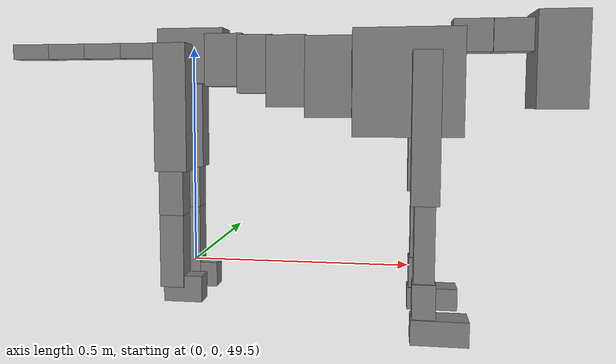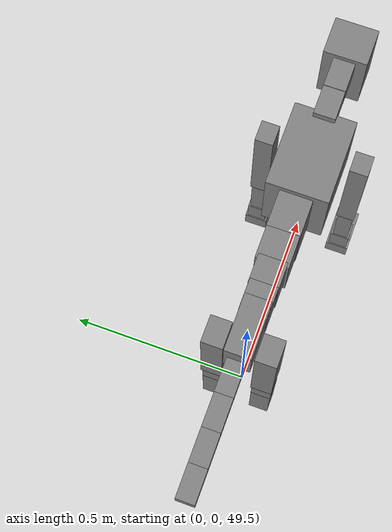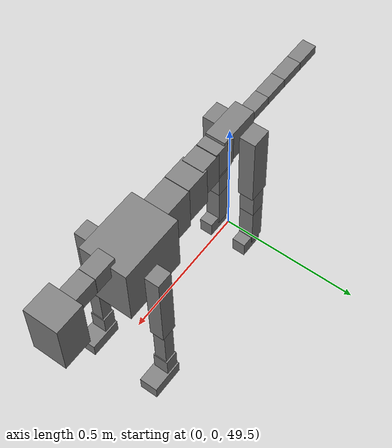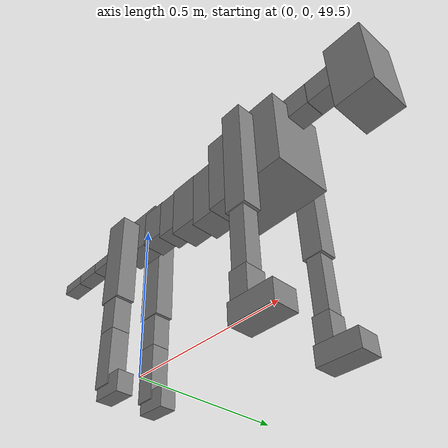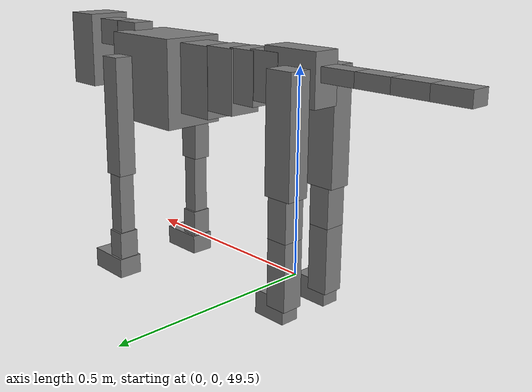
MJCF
<mujoco model="dog">

    <default>
        <joint armature="0.02" stiffness="1" damping="0.2" limited="true"/>
        <geom condim="3" friction="1 0.05 0.05" margin="0.01"/>
        <motor ctrllimited="true" ctrlrange="-1.0 1.0" forcelimited="true" gear="50"/>
    </default>

    <compiler inertiafromgeom="true" angle="radian"/>

    <option timestep="0.016" iterations="50" tolerance="1e-10" solver="Newton" jacobian="dense" cone="pyramidal"/>

    <size nconmax="20000" njmax="60000" nstack="5000000"/>
    <visual>
        <map force="0.1" zfar="30"/>
        <rgba haze="0.15 0.25 0.35 1"/>
        <quality shadowsize="2048"/>
        <global offwidth="800" offheight="800"/>
    </visual>

    <asset>
        <texture type="skybox" builtin="gradient" rgb1="0.3 0.5 0.7" rgb2="0 0 0" width="512" height="512"/>
        <texture name="texplane" type="2d" builtin="checker" rgb1=".2 .3 .4" rgb2=".1 0.15 0.2" width="512" height="512"
                 mark="cross" markrgb=".8 .8 .8"/>
        <texture name="texgeom" type="cube" builtin="flat" mark="cross" width="127" height="1278" rgb1="0.8 0.6 0.4"
                 rgb2="0.8 0.6 0.4" markrgb="1 1 1" random="0.01"/>

        <material name="matplane" reflectance="0.3" texture="texplane" texrepeat="1 1" texuniform="true"/>
        <material name="matgeom" texture="texgeom" texuniform="true" rgba="0.8 0.6 .4 1"/>
    </asset>

    <worldbody>
        <geom name="floor" pos="0 0 0" size="0 0 .25" type="plane" material="matplane" condim="3"/>

        <light directional="false" diffuse=".2 .2 .2" specular="0 0 0" pos="0 0 5" dir="0 0 -1" castshadow="false"/>
        <light mode="targetbodycom" target="torso" directional="false" diffuse=".8 .8 .8" specular="0.3 0.3 0.3"
               pos="0 0 4.0" dir="0 0 -1"/>

        <body name="root" pos="0 0 50">
            <freejoint name="root_1"/>
            <geom type="box" pos="0 0 -0.02" size="0.0774  0.0358  0.063" density="2030"/>

            <body name="spine1" pos="0.054 0 0">
                <joint name="spine1_y" axis="0 1 0" range="0 0.7" limited="true"/>
                <geom type="box" pos="0.02375 0 -0.03" size="0.04375  0.0375  0.05985" density="2030"/>

                <body name="spine2" pos="0.0612 0 0">
                    <joint name="spine2_y" axis="0 1 0" range="-0.15 0.15" limited="true"/>
                    <geom type="box" pos="0.03555  0  -0.04" size="0.04055  0.039  0.06615" density="2030"/>

                    <body name="spine3" pos="0.0730 0 0">
                        <joint name="spine3_y" axis="0 1 0" range="-0.15 0.15" limited="true"/>
                        <geom type="box" pos="0.03555  0  -0.057" size="0.04555  0.0445  0.081" density="2030"/>

                        <body name="spine4" pos="0.0780 0 0">
                            <joint name="spine4_y" axis="0 1 0" range="-0.15 0.15" limited="true"/>
                            <geom type="box" pos="0.05265  0  -0.07" size="0.05265  0.045  0.09135" density="2030"/>

                            <body name="torso" pos="0.1082 0 0">
                                <joint name="torso_y" axis="0 1 0" range="-0.15 0.15" limited="true"/>
                                <geom type="box" pos="0.11925  0  -0.085" size="0.11925  0.085  0.11745"
                                      density="2030"/>

                                <body name="neck1" pos="0.2160  0   0.0180">
                                    <joint name="neck1_y" axis="0 1 0" range="-1.2  -1" limited="true"/>
                                    <geom type="box" pos="0.0423  0  0" size="0.0423  0.03  0.036" density="2325"/>

                                    <body name="neck2" pos="0.0853  0  0">
                                        <joint name="neck2_y" axis="0 1 0" range="0.1  0" limited="true"/>
                                        <geom type="box" pos="0.0423  0  0" size="0.0423  0.03  0.036" density="2325"/>

                                        <body name="head" pos="0.0853  0  0">
                                            <joint name="head_y" axis="0 1 0" range="-0.3  -0.2" limited="true"/>
                                            <geom type="box" pos="0.0531  0  -0.055" size="0.0531  0.06  0.1044"
                                                  density="4030"/>

                                        </body>
                                    </body>
                                </body>

                                <body name="front_shoulder" pos="0.156  0   -0.0480">
                                    <joint name="front_shoulder_y" axis="0 1 0" range="-1 1.5" limited="true"/>
                                    <geom type="box" pos="0 0.13 -0.1335" size="0.0295  0.0252  0.1601" density="1158"/>
                                    <geom type="box" pos="0 -0.13 -0.1335" size="0.0295  0.0252  0.1601"
                                          density="1158"/>

                                    <body name="front_elbow" pos="0  0  -0.2669">
                                        <joint name="front_elbow_y" axis="0 1 0" range="-2 0" limited="true"/>
                                        <geom type="box" pos="0 0.13 -0.1015" size="0.0216  0.0221  0.1015"
                                              density="1081"/>
                                        <geom type="box" pos="0 -0.13 -0.1015" size="0.0216  0.0221  0.1015"
                                              density="1081"/>

                                        <body name="front_wrist" pos="0  0  -0.2029">
                                            <joint name="front_wrist_y" axis="0 1 0" range="-0.2 0" limited="true"/>
                                            <geom type="box" pos="0 0.13 -0.0381" size="0.0245  0.0273  0.0512"
                                                  density="1664"/>
                                            <geom type="box" pos="0 -0.13 -0.0381" size="0.0245  0.0273  0.0512"
                                                  density="1664"/>

                                            <body name="front_finger_end" pos="0  0  -0.0762">
                                                <joint name="front_finger_y" axis="0 1 0" range="-0.4 1"
                                                       limited="true"/>
                                                <geom type="box" pos="0.0328  0.13  -0.0116"
                                                      size="0.0602  0.0328  0.0266" density="1515"/>
                                                <geom type="box" pos="0.0328  -0.13  -0.0116"
                                                      size="0.0602  0.0328  0.0266" density="1515"/>

                                            </body>

                                        </body>
                                    </body>
                                </body>

                            </body>
                        </body>
                    </body>
                </body>
            </body>

            <body name="back_hip" pos="-0.03 0 -0.018">
                <joint name="back_hip_y" axis="0 1 0" range="-1.5 0.3" limited="true"/>
                <geom type="box" pos="0 0.07 -0.1208" size="0.0370  0.0290  0.1436" density="1154"/>
                <geom type="box" pos="0 -0.07 -0.1208" size="0.0370  0.0290  0.1436" density="1154"/>

                <body name="back_knee" pos="0  0  -0.2416">
                    <joint name="back_knee_y" axis="0 1 0" range="0 2.8" limited="true"/>
                    <geom type="box" pos="0 0.07 -0.0532" size="0.0278  0.0274  0.0688" density="1227"/>
                    <geom type="box" pos="0 -0.07 -0.0532" size="0.0278  0.0274  0.0688" density="1227"/>

                    <body name="back_ankle" pos="0  0  -0.1064">
                        <joint name="back_ankle_y" axis="0 1 0" range="-2.2 0" limited="true"/>
                        <geom type="box" pos="0 0.07 -0.0849" size="0.0273  0.0273  0.0962" density="1284"/>
                        <geom type="box" pos="0 -0.07 -0.0849" size="0.0273  0.0273  0.0962" density="1284"/>

                        <body name="back_toe_end" pos="0  0  -0.1698">
                            <joint name="back_toe_y" axis="0 1 0" range="-0.4 1" limited="true"/>
                            <geom type="box" pos="0.0241  0.07  -0.0148" size="0.0441  0.0241  0.0298" density="1515"/>
                            <geom type="box" pos="0.0241  -0.07  -0.0148" size="0.0441  0.0241  0.0298" density="1515"/>

                        </body>
                    </body>
                </body>
            </body>

            <body name="tail1" pos="-0.074 0 -0.006">
                <joint name="tail1_y" axis="0 1 0" range="-0.2 0.2" limited="true"/>
                <geom type="box" pos="-0.0536  0  0" size="0.045  0.025  0.0175" density="1587"/>

                <body name="tail2" pos="-0.09 0 0">
                    <joint name="tail2_y" axis="0 1 0" range="-0.2 0.2" limited="true"/>
                    <geom type="box" pos="-0.0536  0  0" size="0.045  0.025  0.0175" density="1587"/>

                    <body name="tail3" pos="-0.09 0 0">
                        <joint name="tail3_y" axis="0 1 0" range="-0.2 0.2" limited="true"/>
                        <geom type="box" pos="-0.0536  0  0" size="0.045  0.025  0.0175" density="1587"/>

                        <body name="tail4" pos="-0.09 0 0">
                            <joint name="tail4_y" axis="0 1 0" range="-0.2 0.2" limited="true"/>
                            <geom type="box" pos="-0.0536  0  0" size="0.045  0.025  0.0175" density="1587"/>

                        </body>
                    </body>
                </body>
            </body>
        </body>
    </worldbody>

    <actuator>
        <motor joint="spine1_y" forcerange="-150 150     "/>
        <motor joint="spine2_y" forcerange="-150 150     "/>
        <motor joint="spine3_y" forcerange="-150 150     "/>
        <motor joint="spine4_y" forcerange="-150 150     "/>
        <motor joint="torso_y" forcerange="-150 150     "/>
        <motor joint="neck1_y" forcerange="-100 100       "/>
        <motor joint="neck2_y" forcerange="-100 100       "/>
        <motor joint="head_y" forcerange="-150 150       "/>
        <motor joint="front_shoulder_y" forcerange="-129.59 138.50"/>
        <motor joint="front_elbow_y" forcerange="-133.13 127.35"/>
        <motor joint="front_wrist_y" forcerange="-73.18 145.03"/>
        <motor joint="front_finger_y" forcerange="-90.65 44.37"/>
        <motor joint="back_hip_y" forcerange="-348.69 238.39"/>
        <motor joint="back_knee_y" forcerange="-308.82 290.02"/>
        <motor joint="back_angle_y" forcerange="-155.44 180.80"/>
        <motor joint="back_toe_y" forcerange="-83.73 28.73"/>
        <motor joint="tail1_y" forcerange="-50 50     "/>
        <motor joint="tail2_y" forcerange="-50 50     "/>
        <motor joint="tail3_y" forcerange="-50 50     "/>
        <motor joint="tail4_y" forcerange="-50 50     "/>
    </actuator>
</mujoco>
